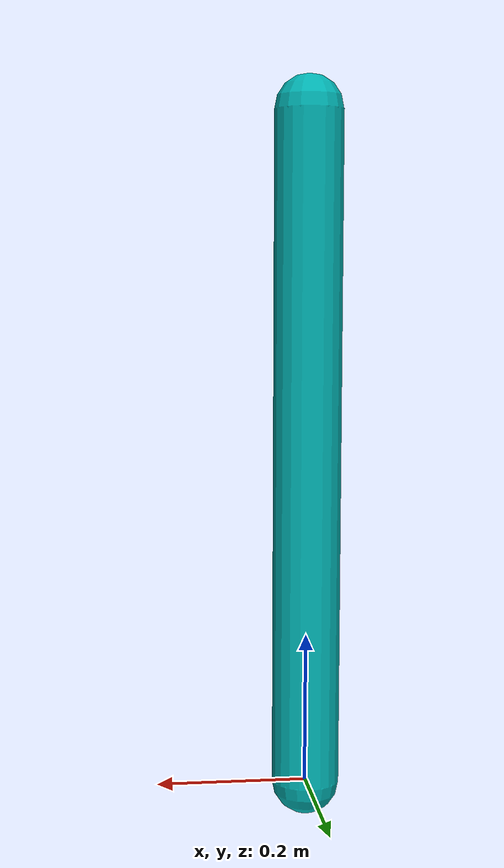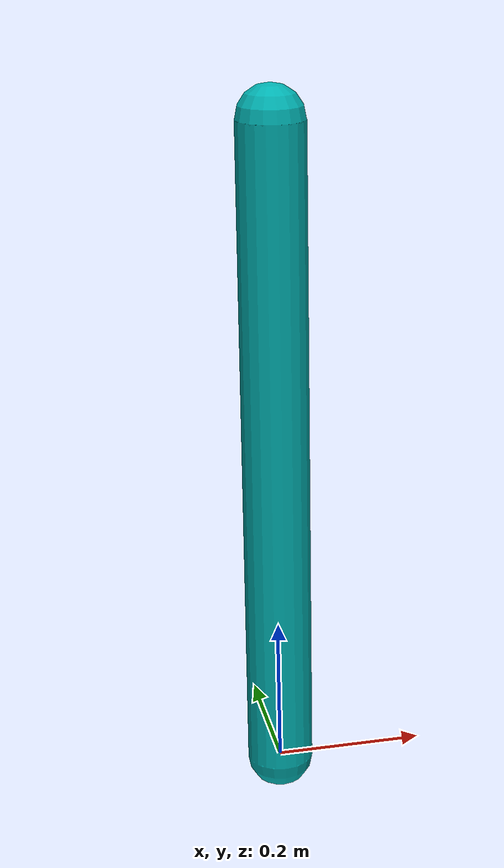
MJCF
<mujoco model="IP-custom">
	<compiler angle="radian" coordinate="local" inertiafromgeom="false" />
	<default>
		<joint damping="0.0" />
		<geom contype="0" friction="0.0 0.0 0.0" rgba="0.7 0.7 0 1" />
	</default>
	<option gravity="0 0 -9.81" integrator="RK4" timestep="0.00833333333" />
	<size nstack="3000" nuser_actuator="10" nuserdata="100" />
	<worldbody>
		<body name="pole" pos="0 0 0">
			<joint axis="0 1 0" limited="true" name="hinge" pos="0 0 0" range="-0.5 0.5" type="hinge" />
			<geom fromto="0 0 0 0 0 0.8879" name="cpole" rgba="0 0.7 0.7 1" size="0.045" type="capsule" />
			<inertial diaginertia="5.666248 5.666248 0.001" mass="51.8041" pos="0 0 0.8879" />
		</body>
	</worldbody>
	<actuator>
		<motor ctrllimited="true" ctrlrange="-1.0 1.0" gear="300" joint="hinge" />
	</actuator>
</mujoco>
